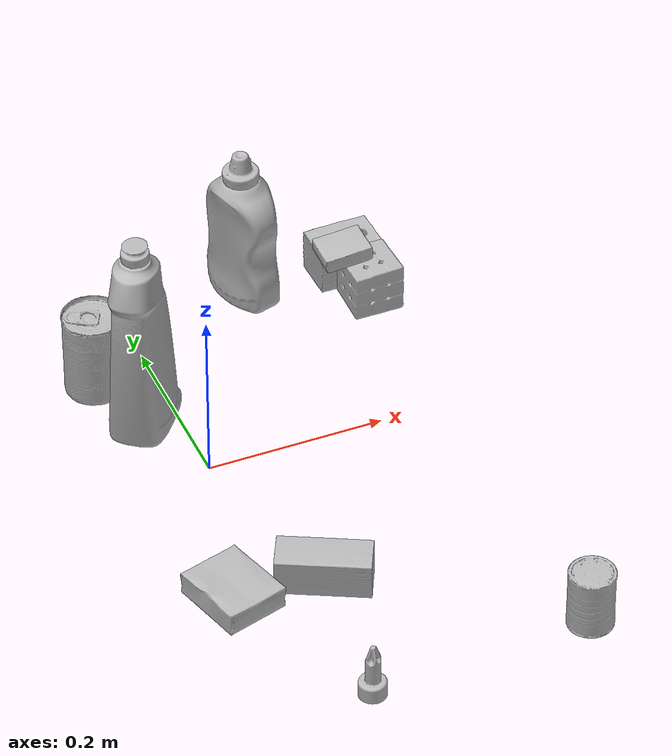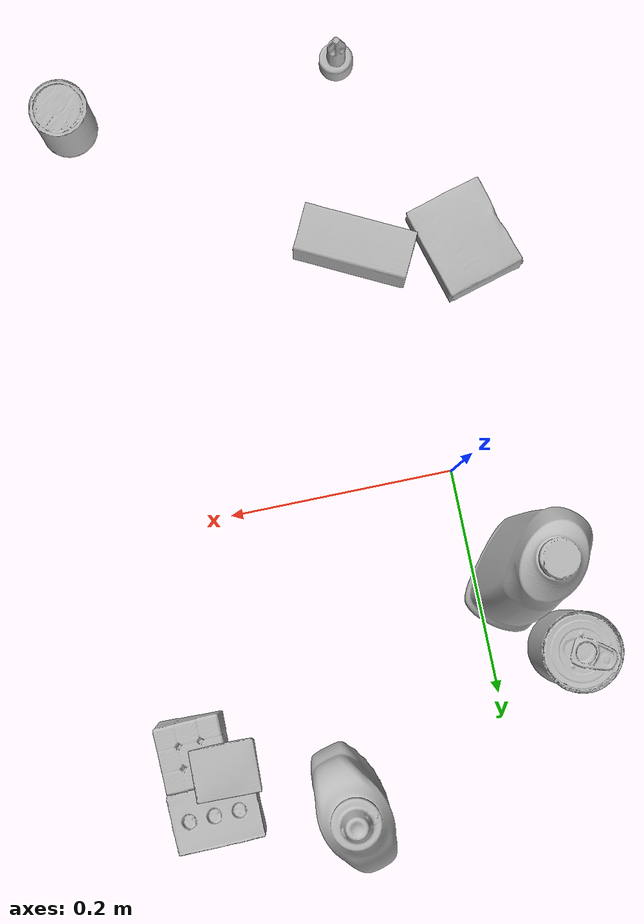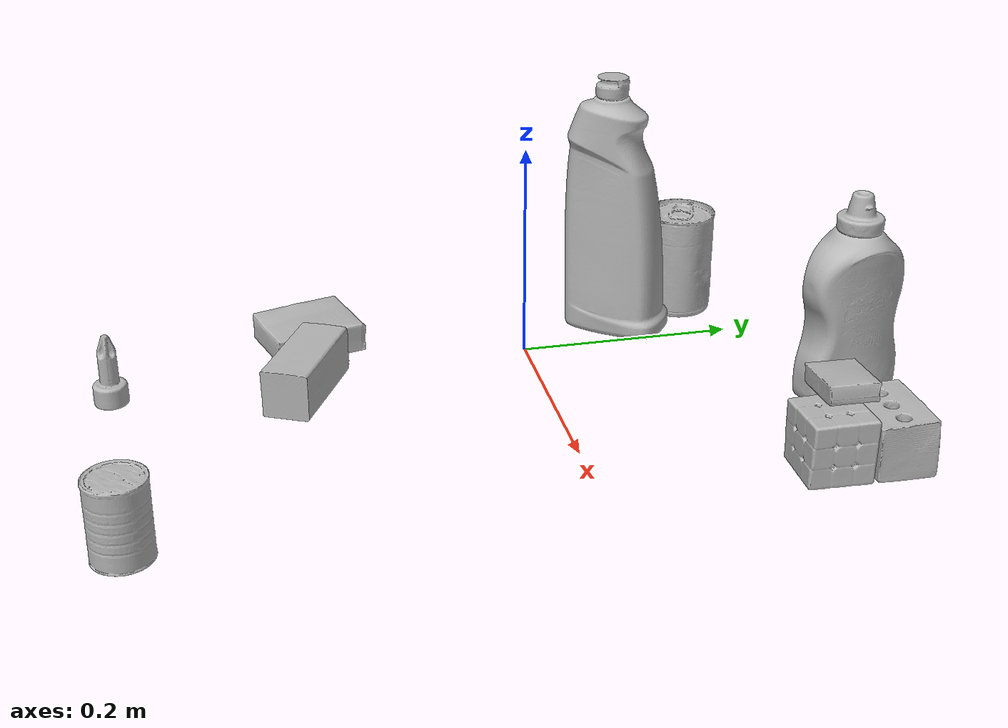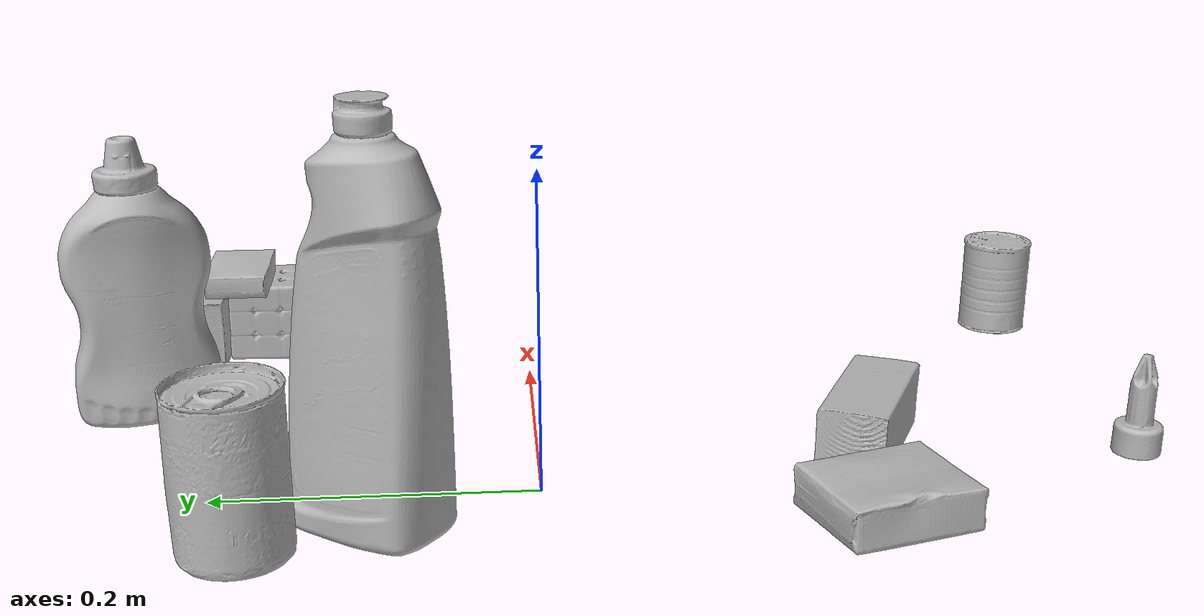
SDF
<sdf version="1.4">
  <world name="default">
    <light name="light1" type="point">
      <pose>0 0 1 0 0 0</pose>
      <diffuse>3 3 3 1</diffuse>
      <specular>3 3 3 1</specular>
    </light>
    <light name="light2" type="point">
      <pose>0 0.5 2 0 0 0</pose>
      <diffuse>1 1 1 1</diffuse>
      <specular>1 1 1 1</specular>
    </light>
    <light name="light3" type="point">
      <pose>0 0.5 2 0 0 0</pose>
      <diffuse>3 3 3 1</diffuse>
      <specular>3 3 3 1</specular>
    </light>
    <scene>
      <ambient>0.7 0.7 0.7</ambient>
    </scene>
    <model name="bottle1">
      <link name="link_bottle1">
        <collision name="default">
          <geometry>
            <mesh>
              <uri>model://bleach_cleanser/collision_meshes/collision.obj</uri>
              <scale>1.0 1.0 1.0</scale>
            </mesh>
          </geometry>
          <surface>
            <friction>
              <ode>
                <mu>0.5</mu>
                <mu2>0.5</mu2>
              </ode>
            </friction>
          <contact>
        <ode>
            <max_vel>0</max_vel>
            <min_depth>0.0001</min_depth>
            <kp>1e8</kp>
        </ode>
    </contact></surface>
        </collision>
        <visual name="default">
          <geometry>
            <mesh>
              <uri>model://bleach_cleanser/visual_meshes/visual.dae</uri>
              <scale>1.0 1.0 1.0</scale>
            </mesh>
          </geometry>
        </visual>
        <inertial>
          <mass>1.1050143241882324</mass>
          <pose>0.00012193183647468686 0.0037838828284293413 -0.02442161738872528 -0.07381670616137478 0.0004201160282461273 -0.006875061809122935</pose>
          <inertia>
            <ixx>0.0053782654</ixx>
            <iyy>0.005011756</iyy>
            <izz>0.00091954356</izz>
            <ixy>0</ixy>
            <ixz>0</ixz>
            <iyz>0</iyz>
          </inertia>
        </inertial>
      </link>
      <pose>-0.03672092407941818 0.0992213562130928 0.12602636218070984 -0.0046615406826216645 0.00637690604794768 2.503129988204141</pose>
    </model>
    <model name="bottle2">
      <link name="link_bottle2">
        <collision name="default">
          <geometry>
            <mesh>
              <uri>model://mustard_bottle/collision_meshes/collision.obj</uri>
              <scale>1.0 1.0 1.0</scale>
            </mesh>
          </geometry>
          <surface>
            <friction>
              <ode>
                <mu>0.5</mu>
                <mu2>0.5</mu2>
              </ode>
            </friction>
          <contact>
        <ode>
            <max_vel>0</max_vel>
            <min_depth>0.0001</min_depth>
            <kp>1e8</kp>
        </ode>
    </contact></surface>
        </collision>
        <visual name="default">
          <geometry>
            <mesh>
              <uri>model://mustard_bottle/visual_meshes/visual.dae</uri>
              <scale>1.0 1.0 1.0</scale>
            </mesh>
          </geometry>
        </visual>
        <inertial>
          <mass>0.622285008430481</mass>
          <pose>0.0005032453336752951 -0.0001564739941386506 -0.0174757931381464 0.0004182326458762318 0.0009465782998157723 0.024853714910341117</pose>
          <inertia>
            <ixx>0.0017280002</ixx>
            <iyy>0.0015161741</iyy>
            <izz>0.00045541534</izz>
            <ixy>0</ixy>
            <ixz>0</ixz>
            <iyz>0</iyz>
          </inertia>
        </inertial>
      </link>
      <pose>0.14438259601593018 0.2613754868507385 0.09583090245723724 -0.012050609361618166 -0.0048904724919737255 0.25782300923727314</pose>
    </model>
    <model name="toy1">
      <link name="link_toy1">
        <collision name="default">
          <geometry>
            <mesh>
              <uri>model://foam_brick/collision_meshes/collision.obj</uri>
              <scale>1.0 1.0 1.0</scale>
            </mesh>
          </geometry>
          <surface>
            <friction>
              <ode>
                <mu>0.5</mu>
                <mu2>0.5</mu2>
              </ode>
            </friction>
          <contact>
        <ode>
            <max_vel>0</max_vel>
            <min_depth>0.0001</min_depth>
            <kp>1e8</kp>
        </ode>
    </contact></surface>
        </collision>
        <visual name="default">
          <geometry>
            <mesh>
              <uri>model://foam_brick/visual_meshes/visual.dae</uri>
              <scale>1.0 1.0 1.0</scale>
            </mesh>
          </geometry>
        </visual>
        <inertial>
          <mass>0.1664208173751831</mass>
          <pose>-0.00025224717683158815 0.0003458438441157341 -0.00025321010616607964 -0.2940189404221327 0.017274440573450563 -0.0007449871782747126</pose>
          <inertia>
            <ixx>7.269573e-05</ixx>
            <iyy>0.00011606247</iyy>
            <izz>0.000117537464</izz>
            <ixy>0</ixy>
            <ixz>0</ixz>
            <iyz>0</iyz>
          </inertia>
        </inertial>
      </link>
      <pose>0.26161542534828186 0.24895869195461273 0.02592272125184536 0.013391069022004865 0.0041546978057051395 0.016045381825543034</pose>
    </model>
    <model name="toy2">
      <link name="link_toy2">
        <collision name="default">
          <geometry>
            <mesh>
              <uri>model://d_toy_airplane/collision_meshes/collision.obj</uri>
              <scale>1.0 1.0 1.0</scale>
            </mesh>
          </geometry>
          <surface>
            <friction>
              <ode>
                <mu>0.5</mu>
                <mu2>0.5</mu2>
              </ode>
            </friction>
          <contact>
        <ode>
            <max_vel>0</max_vel>
            <min_depth>0.0001</min_depth>
            <kp>1e8</kp>
        </ode>
    </contact></surface>
        </collision>
        <visual name="default">
          <geometry>
            <mesh>
              <uri>model://d_toy_airplane/visual_meshes/visual.dae</uri>
              <scale>1.0 1.0 1.0</scale>
            </mesh>
          </geometry>
        </visual>
        <inertial>
          <mass>0.021938346326351166</mass>
          <pose>9.410325583303347e-05 -5.8093231928069144e-05 -0.01172809861600399 0.0002669142468379238 0.0046790018194854816 0.5194488187392164</pose>
          <inertia>
            <ixx>6.5766894e-06</ixx>
            <iyy>6.581649e-06</iyy>
            <izz>1.9855454e-06</izz>
            <ixy>0</ixy>
            <ixz>0</ixz>
            <iyz>0</iyz>
          </inertia>
        </inertial>
      </link>
      <pose>0.024913569912314415 -0.38457393646240234 0.033338867127895355 -8.329707557649618e-07 -0.0001478129335222655 -0.7675966319186218</pose>
    </model>
    <model name="can1">
      <link name="link_can1">
        <collision name="default">
          <geometry>
            <mesh>
              <uri>model://tomato_soup_can/collision_meshes/collision.obj</uri>
              <scale>1.0 1.0 1.0</scale>
            </mesh>
          </geometry>
          <surface>
            <friction>
              <ode>
                <mu>0.5</mu>
                <mu2>0.5</mu2>
              </ode>
            </friction>
          <contact>
        <ode>
            <max_vel>0</max_vel>
            <min_depth>0.0001</min_depth>
            <kp>1e8</kp>
        </ode>
    </contact></surface>
        </collision>
        <visual name="default">
          <geometry>
            <mesh>
              <uri>model://tomato_soup_can/visual_meshes/visual.dae</uri>
              <scale>1.0 1.0 1.0</scale>
            </mesh>
          </geometry>
        </visual>
        <inertial>
          <mass>0.39673706889152527</mass>
          <pose>0.00012652271834667772 0.00010805520287249237 -0.0017973972717300057 0.007020066809275346 0.000422998323222239 -0.009903841103285913</pose>
          <inertia>
            <ixx>0.00043498844</ixx>
            <iyy>0.00043247454</iyy>
            <izz>0.00022545052</izz>
            <ixy>0</ixy>
            <ixz>0</ixz>
            <iyz>0</iyz>
          </inertia>
        </inertial>
      </link>
      <pose>-0.06553065031766891 0.17303566634655 0.05127401649951935 -3.747268093559885e-07 -8.356384888104656e-07 -2.330664598701473</pose>
    </model>
    <model name="can2">
      <link name="link_can2">
        <collision name="default">
          <geometry>
            <mesh>
              <uri>model://master_chef_can/collision_meshes/collision.obj</uri>
              <scale>0.5 0.5 0.5</scale>
            </mesh>
          </geometry>
          <surface>
            <friction>
              <ode>
                <mu>0.5</mu>
                <mu2>0.5</mu2>
              </ode>
            </friction>
          <contact>
        <ode>
            <max_vel>0</max_vel>
            <min_depth>0.0001</min_depth>
            <kp>1e8</kp>
        </ode>
    </contact></surface>
        </collision>
        <visual name="default">
          <geometry>
            <mesh>
              <uri>model://master_chef_can/visual_meshes/visual.dae</uri>
              <scale>0.5 0.5 0.5</scale>
            </mesh>
          </geometry>
        </visual>
        <inertial>
          <mass>0.08835740387439728</mass>
          <pose>-4.6619654312962666e-05 1.3926853625889635e-07 -5.079947004560381e-05 -0.0017995147102642629 0.0006479189020740588 -0.6102650934471076</pose>
          <inertia>
            <ixx>5.1859814e-05</ixx>
            <iyy>5.1478128e-05</iyy>
            <izz>2.8656508e-05</izz>
            <ixy>0</ixy>
            <ixz>0</ixz>
            <iyz>0</iyz>
          </inertia>
        </inertial>
      </link>
      <pose>0.2739897668361664 -0.37387076020240784 0.035301994532346725 -5.989153043834625e-07 -5.405144694264869e-07 1.2943290270190186</pose>
    </model>
    <model name="box1">
      <link name="link_box1">
        <collision name="default">
          <geometry>
            <mesh>
              <uri>model://wood_block/collision_meshes/collision.obj</uri>
              <scale>0.5 0.5 0.5</scale>
            </mesh>
          </geometry>
          <surface>
            <friction>
              <ode>
                <mu>0.5</mu>
                <mu2>0.5</mu2>
              </ode>
            </friction>
          <contact>
        <ode>
            <max_vel>0</max_vel>
            <min_depth>0.0001</min_depth>
            <kp>1e8</kp>
        </ode>
    </contact></surface>
        </collision>
        <visual name="default">
          <geometry>
            <mesh>
              <uri>model://wood_block/visual_meshes/visual.dae</uri>
              <scale>0.5 0.5 0.5</scale>
            </mesh>
          </geometry>
        </visual>
        <inertial>
          <mass>0.15377527475357056</mass>
          <pose>-2.9066577553749084e-06 -0.000285404734313488 0.00013204291462898254 -0.05220825990774677 -0.0051926953585221414 -0.0068613782788382646</pose>
          <inertia>
            <ixx>5.1443654e-05</ixx>
            <iyy>0.00016251049</iyy>
            <izz>0.00016190263</izz>
            <ixy>0</ixy>
            <ixz>0</ixz>
            <iyz>0</iyz>
          </inertia>
        </inertial>
      </link>
      <pose>0.043604761362075806 -0.21249762177467346 0.0226292684674263 -0.0052084422822823336 0.005718721848031308 2.6763480248126204</pose>
    </model>
    <model name="box2">
      <link name="link_box2">
        <collision name="default">
          <geometry>
            <mesh>
              <uri>model://rubiks_cube/collision_meshes/collision.obj</uri>
              <scale>1.0 1.0 1.0</scale>
            </mesh>
          </geometry>
          <surface>
            <friction>
              <ode>
                <mu>0.5</mu>
                <mu2>0.5</mu2>
              </ode>
            </friction>
          <contact>
        <ode>
            <max_vel>0</max_vel>
            <min_depth>0.0001</min_depth>
            <kp>1e8</kp>
        </ode>
    </contact></surface>
        </collision>
        <visual name="default">
          <geometry>
            <mesh>
              <uri>model://rubiks_cube/visual_meshes/visual.dae</uri>
              <scale>1.0 1.0 1.0</scale>
            </mesh>
          </geometry>
        </visual>
        <inertial>
          <mass>0.2856966555118561</mass>
          <pose>2.6721041649580002e-05 5.2569666877388954e-05 -7.264316082000732e-06 -0.05467209736319516 -0.09813912050272719 -0.034455106160143086</pose>
          <inertia>
            <ixx>0.00015786657</ixx>
            <iyy>0.00015713037</iyy>
            <izz>0.00015917476</izz>
            <ixy>0</ixy>
            <ixz>0</ixz>
            <iyz>0</iyz>
          </inertia>
        </inertial>
      </link>
      <pose>0.27000224590301514 0.19363659620285034 0.028685210272669792 -0.008213744748074424 -0.008051350464202625 0.018539095979881032</pose>
    </model>
    <model name="box3">
      <link name="link_box3">
        <collision name="default">
          <geometry>
            <mesh>
              <uri>model://gelatin_box/collision_meshes/collision.obj</uri>
              <scale>1.0 1.0 1.0</scale>
            </mesh>
          </geometry>
          <surface>
            <friction>
              <ode>
                <mu>0.5</mu>
                <mu2>0.5</mu2>
              </ode>
            </friction>
          <contact>
        <ode>
            <max_vel>0</max_vel>
            <min_depth>0.0001</min_depth>
            <kp>1e8</kp>
        </ode>
    </contact></surface>
        </collision>
        <visual name="default">
          <geometry>
            <mesh>
              <uri>model://gelatin_box/visual_meshes/visual.dae</uri>
              <scale>1.0 1.0 1.0</scale>
            </mesh>
          </geometry>
        </visual>
        <inertial>
          <mass>0.24612535536289215</mass>
          <pose>0.0004319618456065655 0.00011156871914863586 -0.00036403213744051754 -0.0010503719772071295 -0.004755818223732799 0.016440561334178715</pose>
          <inertia>
            <ixx>0.00017374444</ixx>
            <iyy>0.00012410474</iyy>
            <izz>0.00026447774</izz>
            <ixy>0</ixy>
            <ixz>0</ixz>
            <iyz>0</iyz>
          </inertia>
        </inertial>
      </link>
      <pose>-0.05320669338107109 -0.19959837198257446 0.015168310143053532 0.005597116792159744 -0.007304127185307595 -2.8682527596086116</pose>
    </model>
    <model name="box4">
      <link name="link_box4">
        <collision name="default">
          <geometry>
            <mesh>
              <uri>model://pudding_box/collision_meshes/collision.obj</uri>
              <scale>0.5 0.5 0.5</scale>
            </mesh>
          </geometry>
          <surface>
            <friction>
              <ode>
                <mu>0.5</mu>
                <mu2>0.5</mu2>
              </ode>
            </friction>
          <contact>
        <ode>
            <max_vel>0</max_vel>
            <min_depth>0.0001</min_depth>
            <kp>1e8</kp>
        </ode>
    </contact></surface>
        </collision>
        <visual name="default">
          <geometry>
            <mesh>
              <uri>model://pudding_box/visual_meshes/visual.dae</uri>
              <scale>0.5 0.5 0.5</scale>
            </mesh>
          </geometry>
        </visual>
        <inertial>
          <mass>0.025328172370791435</mass>
          <pose>0.00024474109522998333 0.00040339428232982755 -0.0002594413817860186 0.00521310085836893 -0.006603797787762854 0.020079828890944847</pose>
          <inertia>
            <ixx>7.15805e-06</ixx>
            <iyy>4.8159864e-06</iyy>
            <izz>1.0570731e-05</izz>
            <ixy>0</ixy>
            <ixz>0</ixz>
            <iyz>0</iyz>
          </inertia>
        </inertial>
      </link>
      <pose>0.24395149946212769 0.21092446148395538 0.06720022857189178 0.07610873237430706 0.009679749921944076 -1.5947638714448227</pose>
    </model>
  <physics type="ode">
      <max_contacts>50</max_contacts>
      <ode>
        <solver>
          <type>quick</type>
          <iters>75</iters>
        </solver>
        <constraints>
          <contact_max_correcting_vel>0</contact_max_correcting_vel>
          <contact_surface_layer>0</contact_surface_layer>
        </constraints>
      </ode>
    </physics></world>
</sdf>
